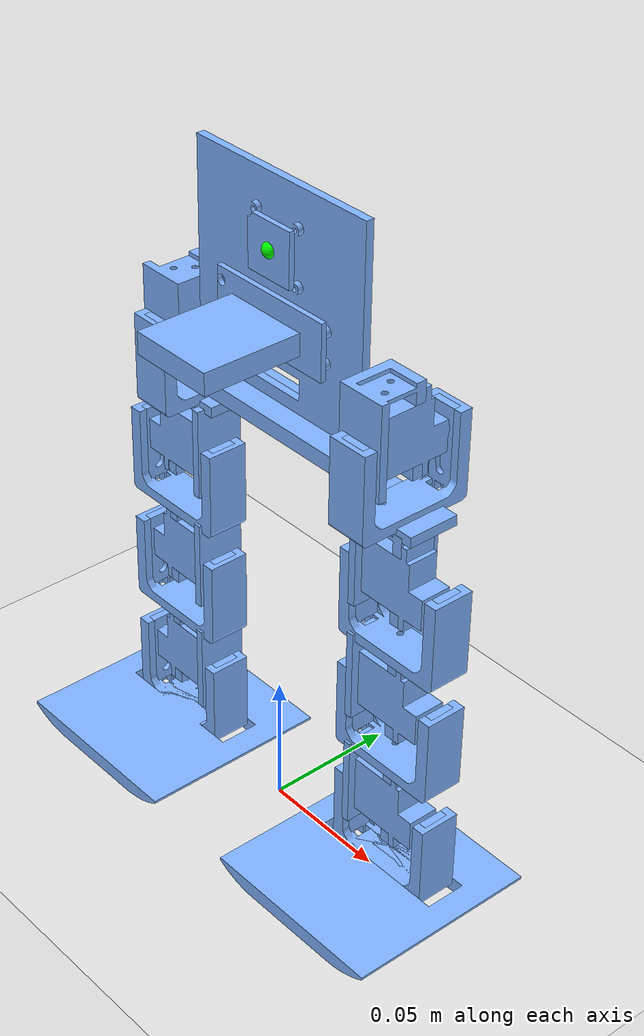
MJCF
<?xml version="1.0" ?>
<mujoco model="v4Robot_v81">
  <compiler angle="radian"/>
  <default>
    <mesh scale="0.001 0.001 0.001"/>
    <geom rgba="0.5 0.7 1.0 1" contype="0" conaffinity="0"/>
    <joint damping="0.002" range="-1.5 1.5" armature="0.0005"/>
    <position kp="5" kv="0.02" forcelimited="true" forcerange="-0.1 0.1" ctrllimited="true" ctrlrange="-1.57 1.57"/>
  </default>
  <asset>
    <mesh file="meshes/body_1+motorMountU_v7_3.stl" name="body_1+motorMountU_v7_3_mesh"/>
    <mesh file="meshes/body_1+motorMountU_v7(Mirror)_1.stl" name="body_1+motorMountU_v7(Mirror)_1_mesh"/>
    <mesh file="meshes/rollAttachment_1+horn_slide_v23_1+servo_v10_1.stl" name="rollAttachment_1+horn_slide_v23_1+servo_v10_1_mesh"/>
    <mesh file="meshes/rollAttachment_1+horn_slide_v23_1+horn_slider_1.stl" name="rollAttachment_1+horn_slide_v23_1+horn_slider_1_mesh"/>
    <mesh file="meshes/rollAttachment_1+horn_slide_v23_1+slide_u_1.stl" name="rollAttachment_1+horn_slide_v23_1+slide_u_1_mesh"/>
    <mesh file="meshes/rollAttachment_1+horn_slide_v23_1+bearing_slider_1.stl" name="rollAttachment_1+horn_slide_v23_1+bearing_slider_1_mesh"/>
    <mesh file="meshes/rollAttachment_1+motorMountU_v7_1.stl" name="rollAttachment_1+motorMountU_v7_1_mesh"/>
    <mesh file="meshes/leg_1+horn_slide_v23_2+servo_v10_1.stl" name="leg_1+horn_slide_v23_2+servo_v10_1_mesh"/>
    <mesh file="meshes/leg_1+horn_slide_v23_2+horn_slider_1.stl" name="leg_1+horn_slide_v23_2+horn_slider_1_mesh"/>
    <mesh file="meshes/leg_1+horn_slide_v23_2+slide_u_1.stl" name="leg_1+horn_slide_v23_2+slide_u_1_mesh"/>
    <mesh file="meshes/leg_1+horn_slide_v23_2+bearing_slider_1.stl" name="leg_1+horn_slide_v23_2+bearing_slider_1_mesh"/>
    <mesh file="meshes/leg_1+motorMountU_v7_2.stl" name="leg_1+motorMountU_v7_2_mesh"/>
    <mesh file="meshes/leg_2+horn_slide_v23_2+servo_v10_1.stl" name="leg_2+horn_slide_v23_2+servo_v10_1_mesh"/>
    <mesh file="meshes/leg_2+horn_slide_v23_2+horn_slider_1.stl" name="leg_2+horn_slide_v23_2+horn_slider_1_mesh"/>
    <mesh file="meshes/leg_2+horn_slide_v23_2+slide_u_1.stl" name="leg_2+horn_slide_v23_2+slide_u_1_mesh"/>
    <mesh file="meshes/leg_2+horn_slide_v23_2+bearing_slider_1.stl" name="leg_2+horn_slide_v23_2+bearing_slider_1_mesh"/>
    <mesh file="meshes/leg_2+motorMountU_v7_2.stl" name="leg_2+motorMountU_v7_2_mesh"/>
    <mesh file="meshes/foot_1+horn_slide_v23_3+servo_v10_1.stl" name="foot_1+horn_slide_v23_3+servo_v10_1_mesh"/>
    <mesh file="meshes/foot_1+horn_slide_v23_3+horn_slider_1.stl" name="foot_1+horn_slide_v23_3+horn_slider_1_mesh"/>
    <mesh file="meshes/foot_1+horn_slide_v23_3+slide_u_1.stl" name="foot_1+horn_slide_v23_3+slide_u_1_mesh"/>
    <mesh file="meshes/foot_1+horn_slide_v23_3+bearing_slider_1.stl" name="foot_1+horn_slide_v23_3+bearing_slider_1_mesh"/>
    <mesh file="meshes/foot_1+Component54_1.stl" name="foot_1+Component54_1_mesh"/>
    <mesh file="meshes/rollAttachment_1+connector_1.stl" name="rollAttachment_1+connector_1_mesh"/>
    <mesh file="meshes/body_1+body_(1)_1.stl" name="body_1+body_(1)_1_mesh"/>
    <mesh file="meshes/rollAttachment(Mirror)_1+horn_slide_v23(Mirror)_1+servo_v10(Mirror)_1.stl" name="rollAttachment(Mirror)_1+horn_slide_v23(Mirror)_1+servo_v10(Mirror)_1_mesh"/>
    <mesh file="meshes/rollAttachment(Mirror)_1+horn_slide_v23(Mirror)_1+horn_slider(Mirror)_1.stl" name="rollAttachment(Mirror)_1+horn_slide_v23(Mirror)_1+horn_slider(Mirror)_1_mesh"/>
    <mesh file="meshes/rollAttachment(Mirror)_1+horn_slide_v23(Mirror)_1+slide_u(Mirror)_1.stl" name="rollAttachment(Mirror)_1+horn_slide_v23(Mirror)_1+slide_u(Mirror)_1_mesh"/>
    <mesh file="meshes/rollAttachment(Mirror)_1+horn_slide_v23(Mirror)_1+bearing_slider(Mirror)_1.stl" name="rollAttachment(Mirror)_1+horn_slide_v23(Mirror)_1+bearing_slider(Mirror)_1_mesh"/>
    <mesh file="meshes/rollAttachment(Mirror)_1+connector(Mirror)_1.stl" name="rollAttachment(Mirror)_1+connector(Mirror)_1_mesh"/>
    <mesh file="meshes/rollAttachment(Mirror)_1+motorMountU_v7(Mirror)_(1)_1.stl" name="rollAttachment(Mirror)_1+motorMountU_v7(Mirror)_(1)_1_mesh"/>
    <mesh file="meshes/leg(Mirror)_1+horn_slide_v23(Mirror)_(1)_1+servo_v10(Mirror)_(1)_1.stl" name="leg(Mirror)_1+horn_slide_v23(Mirror)_(1)_1+servo_v10(Mirror)_(1)_1_mesh"/>
    <mesh file="meshes/leg(Mirror)_1+horn_slide_v23(Mirror)_(1)_1+horn_slider(Mirror)_(1)_1.stl" name="leg(Mirror)_1+horn_slide_v23(Mirror)_(1)_1+horn_slider(Mirror)_(1)_1_mesh"/>
    <mesh file="meshes/leg(Mirror)_1+horn_slide_v23(Mirror)_(1)_1+slide_u(Mirror)_(1)_1.stl" name="leg(Mirror)_1+horn_slide_v23(Mirror)_(1)_1+slide_u(Mirror)_(1)_1_mesh"/>
    <mesh file="meshes/leg(Mirror)_1+horn_slide_v23(Mirror)_(1)_1+bearing_slider(Mirror)_(1)_1.stl" name="leg(Mirror)_1+horn_slide_v23(Mirror)_(1)_1+bearing_slider(Mirror)_(1)_1_mesh"/>
    <mesh file="meshes/leg(Mirror)_1+motorMountU_v7(Mirror)_(2)_1.stl" name="leg(Mirror)_1+motorMountU_v7(Mirror)_(2)_1_mesh"/>
    <mesh file="meshes/leg(Mirror)_(1)_1+horn_slide_v23(Mirror)_(2)_1+servo_v10(Mirror)_(2)_1.stl" name="leg(Mirror)_(1)_1+horn_slide_v23(Mirror)_(2)_1+servo_v10(Mirror)_(2)_1_mesh"/>
    <mesh file="meshes/leg(Mirror)_(1)_1+horn_slide_v23(Mirror)_(2)_1+horn_slider(Mirror)_(2)_1.stl" name="leg(Mirror)_(1)_1+horn_slide_v23(Mirror)_(2)_1+horn_slider(Mirror)_(2)_1_mesh"/>
    <mesh file="meshes/leg(Mirror)_(1)_1+horn_slide_v23(Mirror)_(2)_1+slide_u(Mirror)_(2)_1.stl" name="leg(Mirror)_(1)_1+horn_slide_v23(Mirror)_(2)_1+slide_u(Mirror)_(2)_1_mesh"/>
    <mesh file="meshes/leg(Mirror)_(1)_1+horn_slide_v23(Mirror)_(2)_1+bearing_slider(Mirror)_(2)_1.stl" name="leg(Mirror)_(1)_1+horn_slide_v23(Mirror)_(2)_1+bearing_slider(Mirror)_(2)_1_mesh"/>
    <mesh file="meshes/leg(Mirror)_(1)_1+motorMountU_v7(Mirror)_(3)_1.stl" name="leg(Mirror)_(1)_1+motorMountU_v7(Mirror)_(3)_1_mesh"/>
    <mesh file="meshes/foot(Mirror)_(1)_1+horn_slide_v23(Mirror)_(4)_1+servo_v10(Mirror)_(4)_1.stl" name="foot(Mirror)_(1)_1+horn_slide_v23(Mirror)_(4)_1+servo_v10(Mirror)_(4)_1_mesh"/>
    <mesh file="meshes/foot(Mirror)_(1)_1+horn_slide_v23(Mirror)_(4)_1+horn_slider(Mirror)_(4)_1.stl" name="foot(Mirror)_(1)_1+horn_slide_v23(Mirror)_(4)_1+horn_slider(Mirror)_(4)_1_mesh"/>
    <mesh file="meshes/foot(Mirror)_(1)_1+horn_slide_v23(Mirror)_(4)_1+slide_u(Mirror)_(4)_1.stl" name="foot(Mirror)_(1)_1+horn_slide_v23(Mirror)_(4)_1+slide_u(Mirror)_(4)_1_mesh"/>
    <mesh file="meshes/foot(Mirror)_(1)_1+horn_slide_v23(Mirror)_(4)_1+bearing_slider(Mirror)_(4)_1.stl" name="foot(Mirror)_(1)_1+horn_slide_v23(Mirror)_(4)_1+bearing_slider(Mirror)_(4)_1_mesh"/>
    <mesh file="meshes/foot(Mirror)_(1)_1+Component54(Mirror)_(1)_1.stl" name="foot(Mirror)_(1)_1+Component54(Mirror)_(1)_1_mesh"/>
    <mesh file="meshes/body_1+pi_holder_v2_1.stl" name="body_1+pi_holder_v2_1_mesh"/>
    <mesh file="meshes/body_1+pico_1.stl" name="body_1+pico_1_mesh"/>
    <mesh file="meshes/body_1+imu_1.stl" name="body_1+imu_1_mesh"/>
  </asset>
  <actuator>
    <position name="rollAttachment_1+horn_slide_v23_1+horn_slider_1Revolute_3" joint="rollAttachment_1+horn_slide_v23_1+horn_slider_1Revolute_3"/>
    <position name="leg_1+horn_slide_v23_2+horn_slider_1Revolute_3" joint="leg_1+horn_slide_v23_2+horn_slider_1Revolute_3"/>
    <position name="leg_2+horn_slide_v23_2+horn_slider_1Revolute_3" joint="leg_2+horn_slide_v23_2+horn_slider_1Revolute_3"/>
    <position name="foot_1+horn_slide_v23_3+horn_slider_1Revolute_3" joint="foot_1+horn_slide_v23_3+horn_slider_1Revolute_3"/>
    <position name="rollAttachment(Mirror)_1+horn_slide_v23(Mirror)_1+horn_slider(Mirror)_1Revolute_3" joint="rollAttachment(Mirror)_1+horn_slide_v23(Mirror)_1+horn_slider(Mirror)_1Revolute_3"/>
    <position name="leg(Mirror)_1+horn_slide_v23(Mirror)_(1)_1+horn_slider(Mirror)_(1)_1Revolute_5" joint="leg(Mirror)_1+horn_slide_v23(Mirror)_(1)_1+horn_slider(Mirror)_(1)_1Revolute_5"/>
    <position name="leg(Mirror)_(1)_1+horn_slide_v23(Mirror)_(2)_1+horn_slider(Mirror)_(2)_1Revolute_3" joint="leg(Mirror)_(1)_1+horn_slide_v23(Mirror)_(2)_1+horn_slider(Mirror)_(2)_1Revolute_3"/>
    <position name="foot(Mirror)_(1)_1+horn_slide_v23(Mirror)_(4)_1+horn_slider(Mirror)_(4)_1Revolute_3" joint="foot(Mirror)_(1)_1+horn_slide_v23(Mirror)_(4)_1+horn_slider(Mirror)_(4)_1Revolute_3"/>
  </actuator>
  <worldbody>
    <geom name="floor" size="0 0 .05" type="plane" condim="3" rgba="0.9 0.9 0.9 1" contype="1" conaffinity="1"/>
    <light mode="targetbodycom" target="body" diffuse=".8 .8 .8" specular="0.3 0.3 0.3" pos="0 -6 4" cutoff="30"/>
    <body name="body">
      <freejoint name="root"/>
      <geom density="186" type="mesh" mesh="body_1+motorMountU_v7_3_mesh"/>
      <geom density="186" type="mesh" mesh="body_1+motorMountU_v7(Mirror)_1_mesh"/>
      <body name="rollAttachment_1+horn_slide_v23_1+servo_v10_1">
        <geom mass="0.0134" type="mesh" mesh="rollAttachment_1+horn_slide_v23_1+servo_v10_1_mesh"/>
        <body name="rollAttachment_1+horn_slide_v23_1+horn_slider_1">
          <joint axis="0 1 0" name="rollAttachment_1+horn_slide_v23_1+horn_slider_1Revolute_3" type="hinge" pos="0.0500 0.0265 0.1742"/>
          <geom density="186" type="mesh" mesh="rollAttachment_1+horn_slide_v23_1+horn_slider_1_mesh"/>
          <body name="rollAttachment_1+horn_slide_v23_1+slide_u_1">
            <geom density="186" type="mesh" mesh="rollAttachment_1+horn_slide_v23_1+slide_u_1_mesh"/>
            <body name="rollAttachment_1+horn_slide_v23_1+bearing_slider_1">
              <geom density="186" type="mesh" mesh="rollAttachment_1+horn_slide_v23_1+bearing_slider_1_mesh"/>
            </body>
            <body name="rollAttachment_1+motorMountU_v7_1">
              <geom density="186" type="mesh" mesh="rollAttachment_1+motorMountU_v7_1_mesh"/>
              <body name="leg_1+horn_slide_v23_2+servo_v10_1">
                <geom mass="0.0134" type="mesh" mesh="leg_1+horn_slide_v23_2+servo_v10_1_mesh"/>
                <body name="leg_1+horn_slide_v23_2+horn_slider_1">
                  <joint axis="1 0 0" name="leg_1+horn_slide_v23_2+horn_slider_1Revolute_3" type="hinge" pos="0.0765 0.0046 0.1228"/>
                  <geom density="186" type="mesh" mesh="leg_1+horn_slide_v23_2+horn_slider_1_mesh"/>
                  <body name="leg_1+horn_slide_v23_2+slide_u_1">
                    <geom density="186" type="mesh" mesh="leg_1+horn_slide_v23_2+slide_u_1_mesh"/>
                    <body name="leg_1+horn_slide_v23_2+bearing_slider_1">
                      <geom density="186" type="mesh" mesh="leg_1+horn_slide_v23_2+bearing_slider_1_mesh"/>
                    </body>
                    <body name="leg_1+motorMountU_v7_2">
                      <geom density="186" type="mesh" mesh="leg_1+motorMountU_v7_2_mesh"/>
                      <body name="leg_2+horn_slide_v23_2+servo_v10_1">
                        <geom mass="0.0134" type="mesh" mesh="leg_2+horn_slide_v23_2+servo_v10_1_mesh"/>
                        <body name="leg_2+horn_slide_v23_2+horn_slider_1">
                          <joint axis="1 0 0" name="leg_2+horn_slide_v23_2+horn_slider_1Revolute_3" type="hinge" pos="0.0765 0.0046 0.0754"/>
                          <geom density="186" type="mesh" mesh="leg_2+horn_slide_v23_2+horn_slider_1_mesh"/>
                          <body name="leg_2+horn_slide_v23_2+slide_u_1">
                            <geom density="186" type="mesh" mesh="leg_2+horn_slide_v23_2+slide_u_1_mesh"/>
                            <body name="leg_2+horn_slide_v23_2+bearing_slider_1">
                              <geom density="186" type="mesh" mesh="leg_2+horn_slide_v23_2+bearing_slider_1_mesh"/>
                            </body>
                            <body name="leg_2+motorMountU_v7_2">
                              <geom density="186" type="mesh" mesh="leg_2+motorMountU_v7_2_mesh"/>
                              <body name="foot_1+horn_slide_v23_3+servo_v10_1">
                                <geom mass="0.0134" type="mesh" mesh="foot_1+horn_slide_v23_3+servo_v10_1_mesh"/>
                                <body name="foot_1+horn_slide_v23_3+horn_slider_1">
                                  <joint axis="1 0 0" name="foot_1+horn_slide_v23_3+horn_slider_1Revolute_3" type="hinge" pos="0.0765 0.0046 0.0280"/>
                                  <geom density="186" type="mesh" mesh="foot_1+horn_slide_v23_3+horn_slider_1_mesh"/>
                                  <body name="foot_1+horn_slide_v23_3+slide_u_1">
                                    <geom density="186" type="mesh" mesh="foot_1+horn_slide_v23_3+slide_u_1_mesh"/>
                                    <body name="foot_1+horn_slide_v23_3+bearing_slider_1">
                                      <geom density="186" type="mesh" mesh="foot_1+horn_slide_v23_3+bearing_slider_1_mesh"/>
                                    </body>
                                    <body name="foot_1+Component54_1">
                                      <geom  name="left_foot_collision" density="186" type="mesh" mesh="foot_1+Component54_1_mesh" contype="1" conaffinity="1"/>
                                      <site name="left_foot_center" pos="0.0566 -0.0059 0" size="0.003" type="sphere" rgba="1 0 0 1"/>
                                    </body>
                                  </body>
                                </body>
                              </body>
                            </body>
                          </body>
                        </body>
                      </body>
                    </body>
                  </body>
                </body>
              </body>
            </body>
            <body name="rollAttachment_1+connector_1">
              <geom density="186" type="mesh" mesh="rollAttachment_1+connector_1_mesh"/>
            </body>
          </body>
        </body>
      </body>
      <body name="body_1+body_(1)_1">
        <geom density="186" type="mesh" mesh="body_1+body_(1)_1_mesh"/>
      </body>
      <body name="rollAttachment(Mirror)_1+horn_slide_v23(Mirror)_1+servo_v10(Mirror)_1">
        <geom mass="0.0134" type="mesh" mesh="rollAttachment(Mirror)_1+horn_slide_v23(Mirror)_1+servo_v10(Mirror)_1_mesh"/>
        <body name="rollAttachment(Mirror)_1+horn_slide_v23(Mirror)_1+horn_slider(Mirror)_1">
          <joint axis="0 1 0" name="rollAttachment(Mirror)_1+horn_slide_v23(Mirror)_1+horn_slider(Mirror)_1Revolute_3" type="hinge" pos="-0.0500 0.0265 0.1742"/>
          <geom density="186" type="mesh" mesh="rollAttachment(Mirror)_1+horn_slide_v23(Mirror)_1+horn_slider(Mirror)_1_mesh"/>
          <body name="rollAttachment(Mirror)_1+horn_slide_v23(Mirror)_1+slide_u(Mirror)_1">
            <geom density="186" type="mesh" mesh="rollAttachment(Mirror)_1+horn_slide_v23(Mirror)_1+slide_u(Mirror)_1_mesh"/>
            <body name="rollAttachment(Mirror)_1+horn_slide_v23(Mirror)_1+bearing_slider(Mirror)_1">
              <geom density="186" type="mesh" mesh="rollAttachment(Mirror)_1+horn_slide_v23(Mirror)_1+bearing_slider(Mirror)_1_mesh"/>
            </body>
            <body name="rollAttachment(Mirror)_1+connector(Mirror)_1">
              <geom density="186" type="mesh" mesh="rollAttachment(Mirror)_1+connector(Mirror)_1_mesh"/>
              <body name="rollAttachment(Mirror)_1+motorMountU_v7(Mirror)_(1)_1">
                <geom density="186" type="mesh" mesh="rollAttachment(Mirror)_1+motorMountU_v7(Mirror)_(1)_1_mesh"/>
                <body name="leg(Mirror)_1+horn_slide_v23(Mirror)_(1)_1+servo_v10(Mirror)_(1)_1">
                  <geom mass="0.0134" type="mesh" mesh="leg(Mirror)_1+horn_slide_v23(Mirror)_(1)_1+servo_v10(Mirror)_(1)_1_mesh"/>
                  <body name="leg(Mirror)_1+horn_slide_v23(Mirror)_(1)_1+horn_slider(Mirror)_(1)_1">
                    <joint axis="-1 0 0" name="leg(Mirror)_1+horn_slide_v23(Mirror)_(1)_1+horn_slider(Mirror)_(1)_1Revolute_5" type="hinge" pos="-0.0765 0.0046 0.1228"/>
                    <geom density="186" type="mesh" mesh="leg(Mirror)_1+horn_slide_v23(Mirror)_(1)_1+horn_slider(Mirror)_(1)_1_mesh"/>
                    <body name="leg(Mirror)_1+horn_slide_v23(Mirror)_(1)_1+slide_u(Mirror)_(1)_1">
                      <geom density="186" type="mesh" mesh="leg(Mirror)_1+horn_slide_v23(Mirror)_(1)_1+slide_u(Mirror)_(1)_1_mesh"/>
                      <body name="leg(Mirror)_1+horn_slide_v23(Mirror)_(1)_1+bearing_slider(Mirror)_(1)_1">
                        <geom density="186" type="mesh" mesh="leg(Mirror)_1+horn_slide_v23(Mirror)_(1)_1+bearing_slider(Mirror)_(1)_1_mesh"/>
                      </body>
                      <body name="leg(Mirror)_1+motorMountU_v7(Mirror)_(2)_1">
                        <geom density="186" type="mesh" mesh="leg(Mirror)_1+motorMountU_v7(Mirror)_(2)_1_mesh"/>
                        <body name="leg(Mirror)_(1)_1+horn_slide_v23(Mirror)_(2)_1+servo_v10(Mirror)_(2)_1">
                          <geom mass="0.0134" type="mesh" mesh="leg(Mirror)_(1)_1+horn_slide_v23(Mirror)_(2)_1+servo_v10(Mirror)_(2)_1_mesh"/>
                          <body name="leg(Mirror)_(1)_1+horn_slide_v23(Mirror)_(2)_1+horn_slider(Mirror)_(2)_1">
                            <joint axis="-1 0 0" name="leg(Mirror)_(1)_1+horn_slide_v23(Mirror)_(2)_1+horn_slider(Mirror)_(2)_1Revolute_3" type="hinge" pos="-0.0765 0.0046 0.0754"/>
                            <geom density="186" type="mesh" mesh="leg(Mirror)_(1)_1+horn_slide_v23(Mirror)_(2)_1+horn_slider(Mirror)_(2)_1_mesh"/>
                            <body name="leg(Mirror)_(1)_1+horn_slide_v23(Mirror)_(2)_1+slide_u(Mirror)_(2)_1">
                              <geom density="186" type="mesh" mesh="leg(Mirror)_(1)_1+horn_slide_v23(Mirror)_(2)_1+slide_u(Mirror)_(2)_1_mesh"/>
                              <body name="leg(Mirror)_(1)_1+horn_slide_v23(Mirror)_(2)_1+bearing_slider(Mirror)_(2)_1">
                                <geom density="186" type="mesh" mesh="leg(Mirror)_(1)_1+horn_slide_v23(Mirror)_(2)_1+bearing_slider(Mirror)_(2)_1_mesh"/>
                              </body>
                              <body name="leg(Mirror)_(1)_1+motorMountU_v7(Mirror)_(3)_1">
                                <geom density="186" type="mesh" mesh="leg(Mirror)_(1)_1+motorMountU_v7(Mirror)_(3)_1_mesh"/>
                                <body name="foot(Mirror)_(1)_1+horn_slide_v23(Mirror)_(4)_1+servo_v10(Mirror)_(4)_1">
                                  <geom mass="0.0134" type="mesh" mesh="foot(Mirror)_(1)_1+horn_slide_v23(Mirror)_(4)_1+servo_v10(Mirror)_(4)_1_mesh"/>
                                  <body name="foot(Mirror)_(1)_1+horn_slide_v23(Mirror)_(4)_1+horn_slider(Mirror)_(4)_1">
                                    <joint axis="-1 0 0" name="foot(Mirror)_(1)_1+horn_slide_v23(Mirror)_(4)_1+horn_slider(Mirror)_(4)_1Revolute_3" type="hinge" pos="-0.0765 0.0046 0.0280"/>
                                    <geom density="186" type="mesh" mesh="foot(Mirror)_(1)_1+horn_slide_v23(Mirror)_(4)_1+horn_slider(Mirror)_(4)_1_mesh"/>
                                    <body name="foot(Mirror)_(1)_1+horn_slide_v23(Mirror)_(4)_1+slide_u(Mirror)_(4)_1">
                                      <geom density="186" type="mesh" mesh="foot(Mirror)_(1)_1+horn_slide_v23(Mirror)_(4)_1+slide_u(Mirror)_(4)_1_mesh"/>
                                      <body name="foot(Mirror)_(1)_1+horn_slide_v23(Mirror)_(4)_1+bearing_slider(Mirror)_(4)_1">
                                        <geom density="186" type="mesh" mesh="foot(Mirror)_(1)_1+horn_slide_v23(Mirror)_(4)_1+bearing_slider(Mirror)_(4)_1_mesh"/>
                                      </body>
                                      <body name="foot(Mirror)_(1)_1+Component54(Mirror)_(1)_1">
                                        <geom name="right_foot_collision" density="186" type="mesh" mesh="foot(Mirror)_(1)_1+Component54(Mirror)_(1)_1_mesh" contype="1" conaffinity="1"/>
                                        <site name="right_foot_center" pos="-0.0566 -0.0059 0" size="0.003" type="sphere" rgba="1 0 0 1"/>
                                      </body>
                                    </body>
                                  </body>
                                </body>
                              </body>
                            </body>
                          </body>
                        </body>
                      </body>
                    </body>
                  </body>
                </body>
              </body>
            </body>
          </body>
        </body>
      </body>
      <body name="body_1+pi_holder_v2_1">
        <geom density="186" type="mesh" mesh="body_1+pi_holder_v2_1_mesh"/>
        <body name="body_1+pico_1">
          <geom density="186" type="mesh" mesh="body_1+pico_1_mesh"/>
        </body>
        <body name="body_1+imu_1">
          <geom density="186" type="mesh" mesh="body_1+imu_1_mesh"/>
          <site name="imu" pos="0 -0.0045 0.2252" size="0.003" type="sphere" rgba="0 1 0 1"/>
        </body>
      </body>
    </body>
    <camera name="track" mode="trackcom" pos="0 -2.1 0.5" xyaxes="1 0 0 0 0.2 1" target="body"/>
  </worldbody>
  <contact>
    <pair name="left_foot_floor" geom1="left_foot_collision" geom2="floor" condim="3" friction="0.35 0.35"/>
    <pair name="right_foot_floor" geom1="right_foot_collision" geom2="floor" condim="3" friction="0.35 0.35"/>
  </contact>
  <sensor>
    <contact name="left_foot_floor_found" geom1="left_foot_collision" geom2="floor" reduce="mindist" num="1" data="found"/>
    <contact name="right_foot_floor_found" geom1="right_foot_collision" geom2="floor" reduce="mindist" num="1" data="found"/>
  </sensor>
</mujoco>
